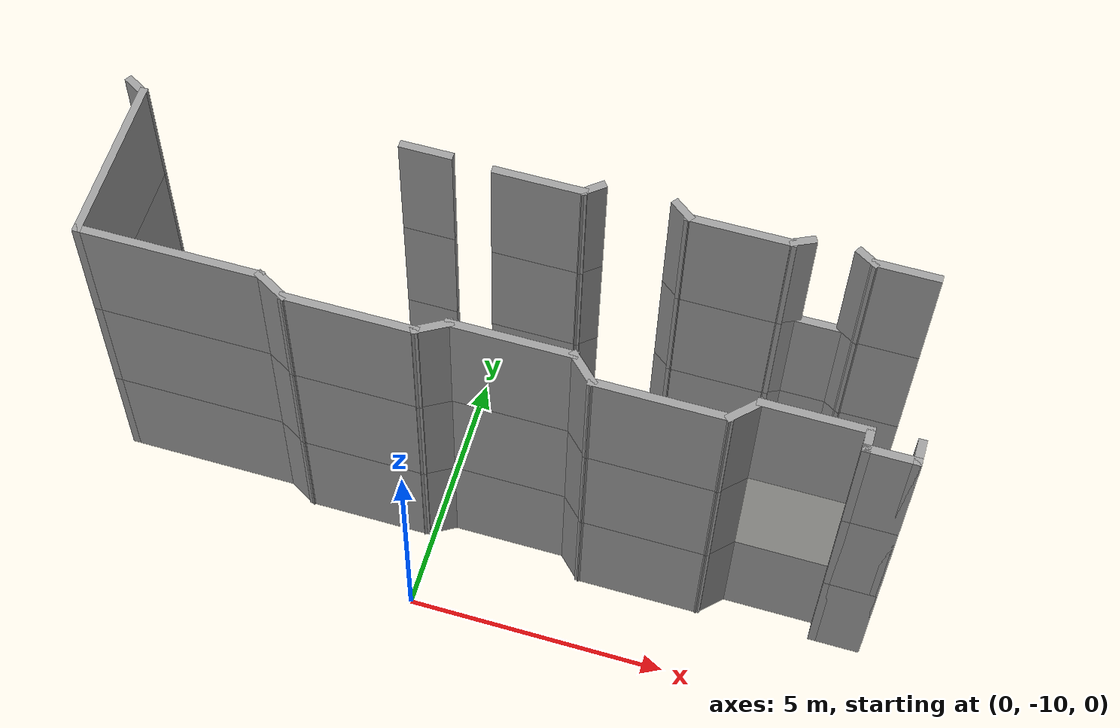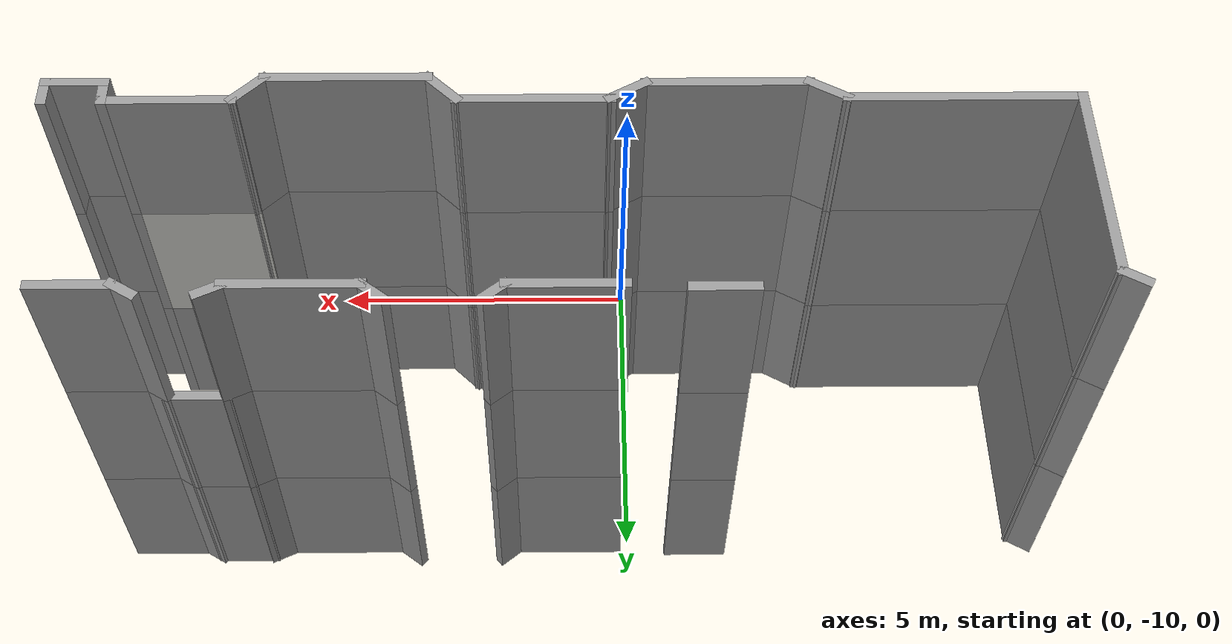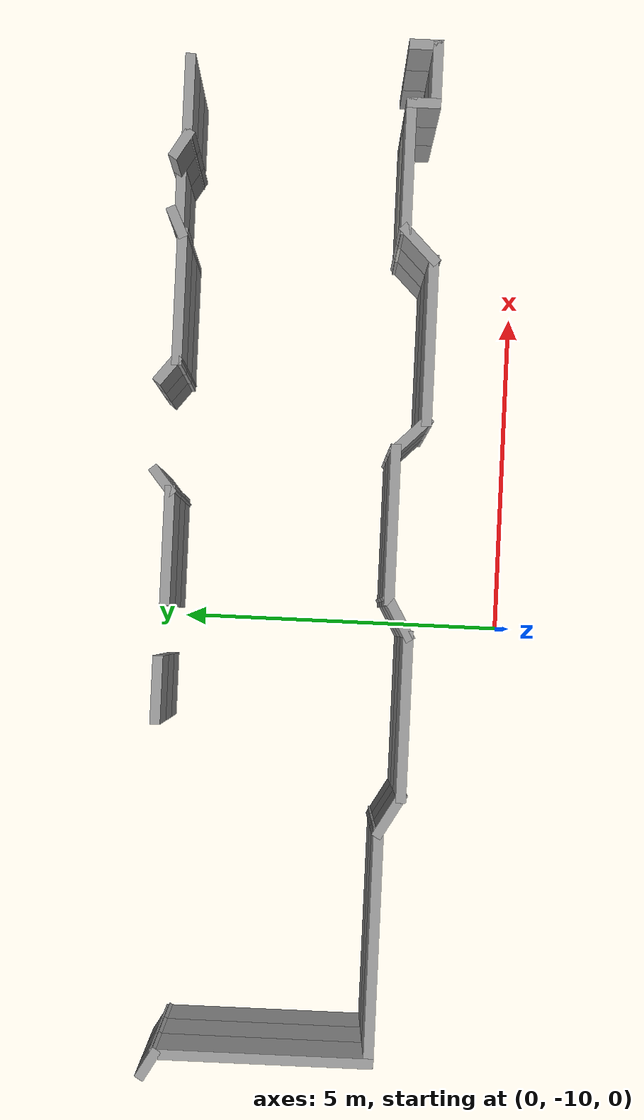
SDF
<sdf version="1.6">
 <model name="use_case1_stacked">
  <pose>0.822713 6.83476 0 0 -0 0</pose>
  <link name="Wall_111">
   <collision name="Wall_111_Collision">
    <geometry><box><size>1 0.15 2.5</size></box></geometry>
    <pose>0 0 1.25 0 -0 0</pose>
   </collision>
   <visual name="Wall_111_Visual">
    <pose>0 0 1.25 0 -0 0</pose>
    <geometry><box><size>1 0.15 2.5</size></box></geometry>
    <material>
     <script><uri>file://media/materials/scripts/gazebo.material</uri><name>Gazebo/Grey</name></script>
     <ambient>1 1 1 1</ambient>
    </material>
   </visual>
   <pose>-1.93738 -11.6696 0 0 -0 0</pose>
  </link>
  <link name="Wall_115">
   <collision name="Wall_115_Collision">
    <geometry><box><size>1.75 0.15 2.5</size></box></geometry>
    <pose>0 0 1.25 0 -0 0</pose>
   </collision>
   <visual name="Wall_115_Visual">
    <pose>0 0 1.25 0 -0 0</pose>
    <geometry><box><size>1.75 0.15 2.5</size></box></geometry>
    <material>
     <script><uri>file://media/materials/scripts/gazebo.material</uri><name>Gazebo/Grey</name></script>
     <ambient>1 1 1 1</ambient>
    </material>
   </visual>
   <pose>0.168215 -11.7308 0 0 -0 0</pose>
  </link>
  <link name="Wall_116">
   <collision name="Wall_116_Collision">
    <geometry><box><size>0.500794 0.15 2.5</size></box></geometry>
    <pose>0 0 1.25 0 -0 0</pose>
   </collision>
   <visual name="Wall_116_Visual">
    <pose>0 0 1.25 0 -0 0</pose>
    <geometry><box><size>0.500794 0.15 2.5</size></box></geometry>
    <material>
     <script><uri>file://media/materials/scripts/gazebo.material</uri><name>Gazebo/Grey</name></script>
     <ambient>1 1 1 1</ambient>
    </material>
   </visual>
   <pose>1.10448 -11.6203 0 0 -0 0.68113</pose>
  </link>
  <link name="Wall_118">
   <collision name="Wall_118_Collision">
    <geometry><box><size>0.502663 0.15 2.5</size></box></geometry>
    <pose>0 0 1.25 0 -0 0</pose>
   </collision>
   <visual name="Wall_118_Visual">
    <pose>0 0 1.25 0 -0 0</pose>
    <geometry><box><size>0.502663 0.15 2.5</size></box></geometry>
    <material>
     <script><uri>file://media/materials/scripts/gazebo.material</uri><name>Gazebo/Grey</name></script>
     <ambient>1 1 1 1</ambient>
    </material>
   </visual>
   <pose>2.72977 -11.6183 0 0 0 -0.662419</pose>
  </link>
  <link name="Wall_119">
   <collision name="Wall_119_Collision">
    <geometry><box><size>2 0.15 2.5</size></box></geometry>
    <pose>0 0 1.25 0 -0 0</pose>
   </collision>
   <visual name="Wall_119_Visual">
    <pose>0 0 1.25 0 -0 0</pose>
    <geometry><box><size>2 0.15 2.5</size></box></geometry>
    <material>
     <script><uri>file://media/materials/scripts/gazebo.material</uri><name>Gazebo/Grey</name></script>
     <ambient>1 1 1 1</ambient>
    </material>
   </visual>
   <pose>3.79381 -11.7421 0 0 -0 0</pose>
  </link>
  <link name="Wall_120">
   <collision name="Wall_120_Collision">
    <geometry><box><size>0.485752 0.15 2.5</size></box></geometry>
    <pose>0 0 1.25 0 -0 0</pose>
   </collision>
   <visual name="Wall_120_Visual">
    <pose>0 0 1.25 0 -0 0</pose>
    <geometry><box><size>0.485752 0.15 2.5</size></box></geometry>
    <material>
     <script><uri>file://media/materials/scripts/gazebo.material</uri><name>Gazebo/Grey</name></script>
     <ambient>1 1 1 1</ambient>
    </material>
   </visual>
   <pose>4.87037 -11.6546 0 0 -0 0.444613</pose>
  </link>
  <link name="Wall_121">
   <collision name="Wall_121_Collision">
    <geometry><box><size>1 0.15 2.5</size></box></geometry>
    <pose>0 0 1.25 0 -0 0</pose>
   </collision>
   <visual name="Wall_121_Visual">
    <pose>0 0 1.25 0 -0 0</pose>
    <geometry><box><size>1 0.15 2.5</size></box></geometry>
    <material>
     <script><uri>file://media/materials/scripts/gazebo.material</uri><name>Gazebo/Grey</name></script>
     <ambient>1 1 1 1</ambient>
    </material>
   </visual>
   <pose>5.44692 -11.5977 0 0 -0 0</pose>
  </link>
  <link name="Wall_122">
   <collision name="Wall_122_Collision">
    <geometry><box><size>0.486841 0.15 2.5</size></box></geometry>
    <pose>0 0 1.25 0 -0 0</pose>
   </collision>
   <visual name="Wall_122_Visual">
    <pose>0 0 1.25 0 -0 0</pose>
    <geometry><box><size>0.486841 0.15 2.5</size></box></geometry>
    <material>
     <script><uri>file://media/materials/scripts/gazebo.material</uri><name>Gazebo/Grey</name></script>
     <ambient>1 1 1 1</ambient>
    </material>
   </visual>
   <pose>6.01583 -11.6699 0 0 0 -0.546304</pose>
  </link>
  <link name="Wall_123">
   <collision name="Wall_123_Collision">
    <geometry><box><size>1.25 0.15 2.5</size></box></geometry>
    <pose>0 0 1.25 0 -0 0</pose>
   </collision>
   <visual name="Wall_123_Visual">
    <pose>0 0 1.25 0 -0 0</pose>
    <geometry><box><size>1.25 0.15 2.5</size></box></geometry>
    <material>
     <script><uri>file://media/materials/scripts/gazebo.material</uri><name>Gazebo/Grey</name></script>
     <ambient>1 1 1 1</ambient>
    </material>
   </visual>
   <pose>6.70973 -11.7421 0 0 -0 0</pose>
  </link>
  <link name="Wall_262">
   <collision name="Wall_262_Collision">
    <geometry><box><size>0.5 0.15 2.5</size></box></geometry>
    <pose>0 0 1.25 0 -0 0</pose>
   </collision>
   <visual name="Wall_262_Visual">
    <pose>0 0 1.25 0 -0 0</pose>
    <geometry><box><size>0.5 0.15 2.5</size></box></geometry>
    <material>
     <script><uri>file://media/materials/scripts/gazebo.material</uri><name>Gazebo/Grey</name></script>
     <ambient>1 1 1 1</ambient>
    </material>
   </visual>
   <pose>7.61542 -15.16 2.5 0 0 -1.5708</pose>
  </link>
  <link name="Wall_263">
   <collision name="Wall_263_Collision">
    <geometry><box><size>1 0.15 2.5</size></box></geometry>
    <pose>0 0 1.25 0 -0 0</pose>
   </collision>
   <visual name="Wall_263_Visual">
    <pose>0 0 1.25 0 -0 0</pose>
    <geometry><box><size>1 0.15 2.5</size></box></geometry>
    <material>
     <script><uri>file://media/materials/scripts/gazebo.material</uri><name>Gazebo/Grey</name></script>
     <ambient>1 1 1 1</ambient>
    </material>
   </visual>
   <pose>7.19042 -15.335 2.5 0 -0 3.14159</pose>
  </link>
  <link name="Wall_264">
   <collision name="Wall_264_Collision">
    <geometry><box><size>0.5 0.15 2.5</size></box></geometry>
    <pose>0 0 1.25 0 -0 0</pose>
   </collision>
   <visual name="Wall_264_Visual">
    <pose>0 0 1.25 0 -0 0</pose>
    <geometry><box><size>0.5 0.15 2.5</size></box></geometry>
    <material>
     <script><uri>file://media/materials/scripts/gazebo.material</uri><name>Gazebo/Grey</name></script>
     <ambient>1 1 1 1</ambient>
    </material>
   </visual>
   <pose>6.76541 -15.16 2.5 0 -0 1.5708</pose>
  </link>
  <link name="Wall_265">
   <collision name="Wall_265_Collision">
    <geometry><box><size>2 0.15 2.5</size></box></geometry>
    <pose>0 0 1.25 0 -0 0</pose>
   </collision>
   <visual name="Wall_265_Visual">
    <pose>0 0 1.25 0 -0 0</pose>
    <geometry><box><size>2 0.15 2.5</size></box></geometry>
    <material>
     <script><uri>file://media/materials/scripts/gazebo.material</uri><name>Gazebo/CeilingTiled</name></script>
     <ambient>1 1 1 1</ambient>
    </material>
   </visual>
   <pose>5.84042 -14.985 2.5 0 -0 3.14159</pose>
  </link>
  <link name="Wall_266">
   <collision name="Wall_266_Collision">
    <geometry><box><size>0.75 0.15 2.5</size></box></geometry>
    <pose>0 0 1.25 0 -0 0</pose>
   </collision>
   <visual name="Wall_266_Visual">
    <pose>0 0 1.25 0 -0 0</pose>
    <geometry><box><size>0.75 0.15 2.5</size></box></geometry>
    <material>
     <script><uri>file://media/materials/scripts/gazebo.material</uri><name>Gazebo/Grey</name></script>
     <ambient>1 1 1 1</ambient>
    </material>
   </visual>
   <pose>4.70328 -15.1972 2.5 0 0 -2.35619</pose>
  </link>
  <link name="Wall_267">
   <collision name="Wall_267_Collision">
    <geometry><box><size>2.5 0.15 2.5</size></box></geometry>
    <pose>0 0 1.25 0 -0 0</pose>
   </collision>
   <visual name="Wall_267_Visual">
    <pose>0 0 1.25 0 -0 0</pose>
    <geometry><box><size>2.5 0.15 2.5</size></box></geometry>
    <material>
     <script><uri>file://media/materials/scripts/gazebo.material</uri><name>Gazebo/Grey</name></script>
     <ambient>1 1 1 1</ambient>
    </material>
   </visual>
   <pose>3.31615 -15.4093 2.5 0 -0 3.14159</pose>
  </link>
  <link name="Wall_268">
   <collision name="Wall_268_Collision">
    <geometry><box><size>0.75 0.15 2.5</size></box></geometry>
    <pose>0 0 1.25 0 -0 0</pose>
   </collision>
   <visual name="Wall_268_Visual">
    <pose>0 0 1.25 0 -0 0</pose>
    <geometry><box><size>0.75 0.15 2.5</size></box></geometry>
    <material>
     <script><uri>file://media/materials/scripts/gazebo.material</uri><name>Gazebo/Grey</name></script>
     <ambient>1 1 1 1</ambient>
    </material>
   </visual>
   <pose>1.92902 -15.1972 2.5 0 -0 2.35619</pose>
  </link>
  <link name="Wall_269">
   <collision name="Wall_269_Collision">
    <geometry><box><size>2.35494 0.15 2.5</size></box></geometry>
    <pose>0 0 1.25 0 -0 0</pose>
   </collision>
   <visual name="Wall_269_Visual">
    <pose>0 0 1.25 0 -0 0</pose>
    <geometry><box><size>2.35494 0.15 2.5</size></box></geometry>
    <material>
     <script><uri>file://media/materials/scripts/gazebo.material</uri><name>Gazebo/Grey</name></script>
     <ambient>1 1 1 1</ambient>
    </material>
   </visual>
   <pose>0.614417 -14.985 2.5 0 -0 3.14159</pose>
  </link>
  <link name="Wall_270">
   <collision name="Wall_270_Collision">
    <geometry><box><size>0.75 0.15 2.5</size></box></geometry>
    <pose>0 0 1.25 0 -0 0</pose>
   </collision>
   <visual name="Wall_270_Visual">
    <pose>0 0 1.25 0 -0 0</pose>
    <geometry><box><size>0.75 0.15 2.5</size></box></geometry>
    <material>
     <script><uri>file://media/materials/scripts/gazebo.material</uri><name>Gazebo/Grey</name></script>
     <ambient>1 1 1 1</ambient>
    </material>
   </visual>
   <pose>-0.730371 -15.135 2.5 0 0 -2.61799</pose>
  </link>
  <link name="Wall_271">
   <collision name="Wall_271_Collision">
    <geometry><box><size>2.5 0.15 2.5</size></box></geometry>
    <pose>0 0 1.25 0 -0 0</pose>
   </collision>
   <visual name="Wall_271_Visual">
    <pose>0 0 1.25 0 -0 0</pose>
    <geometry><box><size>2.5 0.15 2.5</size></box></geometry>
    <material>
     <script><uri>file://media/materials/scripts/gazebo.material</uri><name>Gazebo/Grey</name></script>
     <ambient>1 1 1 1</ambient>
    </material>
   </visual>
   <pose>-2.16518 -15.285 2.5 0 -0 3.14159</pose>
  </link>
  <link name="Wall_272">
   <collision name="Wall_272_Collision">
    <geometry><box><size>0.75 0.15 2.5</size></box></geometry>
    <pose>0 0 1.25 0 -0 0</pose>
   </collision>
   <visual name="Wall_272_Visual">
    <pose>0 0 1.25 0 -0 0</pose>
    <geometry><box><size>0.75 0.15 2.5</size></box></geometry>
    <material>
     <script><uri>file://media/materials/scripts/gazebo.material</uri><name>Gazebo/Grey</name></script>
     <ambient>1 1 1 1</ambient>
    </material>
   </visual>
   <pose>-3.59999 -15.135 2.5 0 -0 2.61799</pose>
  </link>
  <link name="Wall_273">
   <collision name="Wall_273_Collision">
    <geometry><box><size>3.5 0.15 2.5</size></box></geometry>
    <pose>0 0 1.25 0 -0 0</pose>
   </collision>
   <visual name="Wall_273_Visual">
    <pose>0 0 1.25 0 -0 0</pose>
    <geometry><box><size>3.5 0.15 2.5</size></box></geometry>
    <material>
     <script><uri>file://media/materials/scripts/gazebo.material</uri><name>Gazebo/Grey</name></script>
     <ambient>1 1 1 1</ambient>
    </material>
   </visual>
   <pose>-5.53479 -14.985 2.5 0 -0 3.14159</pose>
  </link>
  <link name="Wall_274">
   <collision name="Wall_274_Collision">
    <geometry><box><size>3.25 0.15 2.5</size></box></geometry>
    <pose>0 0 1.25 0 -0 0</pose>
   </collision>
   <visual name="Wall_274_Visual">
    <pose>0 0 1.25 0 -0 0</pose>
    <geometry><box><size>3.25 0.15 2.5</size></box></geometry>
    <material>
     <script><uri>file://media/materials/scripts/gazebo.material</uri><name>Gazebo/Grey</name></script>
     <ambient>1 1 1 1</ambient>
    </material>
   </visual>
   <pose>-7.20979 -13.435 2.5 0 -0 1.5708</pose>
  </link>
  <link name="Wall_275">
   <collision name="Wall_275_Collision">
    <geometry><box><size>0.5 0.15 2.5</size></box></geometry>
    <pose>0 0 1.25 0 -0 0</pose>
   </collision>
   <visual name="Wall_275_Visual">
    <pose>0 0 1.25 0 -0 0</pose>
    <geometry><box><size>0.5 0.15 2.5</size></box></geometry>
    <material>
     <script><uri>file://media/materials/scripts/gazebo.material</uri><name>Gazebo/Grey</name></script>
     <ambient>1 1 1 1</ambient>
    </material>
   </visual>
   <pose>-7.36135 -11.7975 2.5 0 -0 2.61799</pose>
  </link>
  <link name="Wall_313">
   <collision name="Wall_313_Collision">
    <geometry><box><size>1 0.15 2.5</size></box></geometry>
    <pose>0 0 1.25 0 -0 0</pose>
   </collision>
   <visual name="Wall_313_Visual">
    <pose>0 0 1.25 0 -0 0</pose>
    <geometry><box><size>1 0.15 2.5</size></box></geometry>
    <material>
     <script><uri>file://media/materials/scripts/gazebo.material</uri><name>Gazebo/Grey</name></script>
     <ambient>1 1 1 1</ambient>
    </material>
   </visual>
   <pose>-1.93738 -11.6696 2.5 0 -0 0</pose>
  </link>
  <link name="Wall_317">
   <collision name="Wall_317_Collision">
    <geometry><box><size>1.75 0.15 2.5</size></box></geometry>
    <pose>0 0 1.25 0 -0 0</pose>
   </collision>
   <visual name="Wall_317_Visual">
    <pose>0 0 1.25 0 -0 0</pose>
    <geometry><box><size>1.75 0.15 2.5</size></box></geometry>
    <material>
     <script><uri>file://media/materials/scripts/gazebo.material</uri><name>Gazebo/Grey</name></script>
     <ambient>1 1 1 1</ambient>
    </material>
   </visual>
   <pose>0.168215 -11.7308 2.5 0 -0 0</pose>
  </link>
  <link name="Wall_318">
   <collision name="Wall_318_Collision">
    <geometry><box><size>0.500794 0.15 2.5</size></box></geometry>
    <pose>0 0 1.25 0 -0 0</pose>
   </collision>
   <visual name="Wall_318_Visual">
    <pose>0 0 1.25 0 -0 0</pose>
    <geometry><box><size>0.500794 0.15 2.5</size></box></geometry>
    <material>
     <script><uri>file://media/materials/scripts/gazebo.material</uri><name>Gazebo/Grey</name></script>
     <ambient>1 1 1 1</ambient>
    </material>
   </visual>
   <pose>1.10448 -11.6203 2.5 0 -0 0.68113</pose>
  </link>
  <link name="Wall_320">
   <collision name="Wall_320_Collision">
    <geometry><box><size>0.502663 0.15 2.5</size></box></geometry>
    <pose>0 0 1.25 0 -0 0</pose>
   </collision>
   <visual name="Wall_320_Visual">
    <pose>0 0 1.25 0 -0 0</pose>
    <geometry><box><size>0.502663 0.15 2.5</size></box></geometry>
    <material>
     <script><uri>file://media/materials/scripts/gazebo.material</uri><name>Gazebo/Grey</name></script>
     <ambient>1 1 1 1</ambient>
    </material>
   </visual>
   <pose>2.72977 -11.6183 2.5 0 0 -0.662419</pose>
  </link>
  <link name="Wall_321">
   <collision name="Wall_321_Collision">
    <geometry><box><size>2 0.15 2.5</size></box></geometry>
    <pose>0 0 1.25 0 -0 0</pose>
   </collision>
   <visual name="Wall_321_Visual">
    <pose>0 0 1.25 0 -0 0</pose>
    <geometry><box><size>2 0.15 2.5</size></box></geometry>
    <material>
     <script><uri>file://media/materials/scripts/gazebo.material</uri><name>Gazebo/Grey</name></script>
     <ambient>1 1 1 1</ambient>
    </material>
   </visual>
   <pose>3.79381 -11.7421 2.5 0 -0 0</pose>
  </link>
  <link name="Wall_322">
   <collision name="Wall_322_Collision">
    <geometry><box><size>0.485752 0.15 2.5</size></box></geometry>
    <pose>0 0 1.25 0 -0 0</pose>
   </collision>
   <visual name="Wall_322_Visual">
    <pose>0 0 1.25 0 -0 0</pose>
    <geometry><box><size>0.485752 0.15 2.5</size></box></geometry>
    <material>
     <script><uri>file://media/materials/scripts/gazebo.material</uri><name>Gazebo/Grey</name></script>
     <ambient>1 1 1 1</ambient>
    </material>
   </visual>
   <pose>4.87037 -11.6546 2.5 0 -0 0.444613</pose>
  </link>
  <link name="Wall_323">
   <collision name="Wall_323_Collision">
    <geometry><box><size>1 0.15 2.5</size></box></geometry>
    <pose>0 0 1.25 0 -0 0</pose>
   </collision>
   <visual name="Wall_323_Visual">
    <pose>0 0 1.25 0 -0 0</pose>
    <geometry><box><size>1 0.15 2.5</size></box></geometry>
    <material>
     <script><uri>file://media/materials/scripts/gazebo.material</uri><name>Gazebo/Grey</name></script>
     <ambient>1 1 1 1</ambient>
    </material>
   </visual>
   <pose>5.44692 -11.5977 2.5 0 -0 0</pose>
  </link>
  <link name="Wall_324">
   <collision name="Wall_324_Collision">
    <geometry><box><size>0.486841 0.15 2.5</size></box></geometry>
    <pose>0 0 1.25 0 -0 0</pose>
   </collision>
   <visual name="Wall_324_Visual">
    <pose>0 0 1.25 0 -0 0</pose>
    <geometry><box><size>0.486841 0.15 2.5</size></box></geometry>
    <material>
     <script><uri>file://media/materials/scripts/gazebo.material</uri><name>Gazebo/Grey</name></script>
     <ambient>1 1 1 1</ambient>
    </material>
   </visual>
   <pose>6.01583 -11.6699 2.5 0 0 -0.546304</pose>
  </link>
  <link name="Wall_325">
   <collision name="Wall_325_Collision">
    <geometry><box><size>1.25 0.15 2.5</size></box></geometry>
    <pose>0 0 1.25 0 -0 0</pose>
   </collision>
   <visual name="Wall_325_Visual">
    <pose>0 0 1.25 0 -0 0</pose>
    <geometry><box><size>1.25 0.15 2.5</size></box></geometry>
    <material>
     <script><uri>file://media/materials/scripts/gazebo.material</uri><name>Gazebo/Grey</name></script>
     <ambient>1 1 1 1</ambient>
    </material>
   </visual>
   <pose>6.70973 -11.7421 2.5 0 -0 0</pose>
  </link>
  <link name="Wall_329">
   <collision name="Wall_329_Collision">
    <geometry><box><size>0.5 0.15 2.5</size></box></geometry>
    <pose>0 0 1.25 0 -0 0</pose>
   </collision>
   <visual name="Wall_329_Visual">
    <pose>0 0 1.25 0 -0 0</pose>
    <geometry><box><size>0.5 0.15 2.5</size></box></geometry>
    <material>
     <script><uri>file://media/materials/scripts/gazebo.material</uri><name>Gazebo/Grey</name></script>
     <ambient>1 1 1 1</ambient>
    </material>
   </visual>
   <pose>7.61542 -15.16 5 0 0 -1.5708</pose>
  </link>
  <link name="Wall_330">
   <collision name="Wall_330_Collision">
    <geometry><box><size>1 0.15 2.5</size></box></geometry>
    <pose>0 0 1.25 0 -0 0</pose>
   </collision>
   <visual name="Wall_330_Visual">
    <pose>0 0 1.25 0 -0 0</pose>
    <geometry><box><size>1 0.15 2.5</size></box></geometry>
    <material>
     <script><uri>file://media/materials/scripts/gazebo.material</uri><name>Gazebo/Grey</name></script>
     <ambient>1 1 1 1</ambient>
    </material>
   </visual>
   <pose>7.19042 -15.335 5 0 -0 3.14159</pose>
  </link>
  <link name="Wall_331">
   <collision name="Wall_331_Collision">
    <geometry><box><size>0.5 0.15 2.5</size></box></geometry>
    <pose>0 0 1.25 0 -0 0</pose>
   </collision>
   <visual name="Wall_331_Visual">
    <pose>0 0 1.25 0 -0 0</pose>
    <geometry><box><size>0.5 0.15 2.5</size></box></geometry>
    <material>
     <script><uri>file://media/materials/scripts/gazebo.material</uri><name>Gazebo/Grey</name></script>
     <ambient>1 1 1 1</ambient>
    </material>
   </visual>
   <pose>6.76541 -15.16 5 0 -0 1.5708</pose>
  </link>
  <link name="Wall_332">
   <collision name="Wall_332_Collision">
    <geometry><box><size>2 0.15 2.5</size></box></geometry>
    <pose>0 0 1.25 0 -0 0</pose>
   </collision>
   <visual name="Wall_332_Visual">
    <pose>0 0 1.25 0 -0 0</pose>
    <geometry><box><size>2 0.15 2.5</size></box></geometry>
    <material>
     <script><uri>file://media/materials/scripts/gazebo.material</uri><name>Gazebo/Grey</name></script>
     <ambient>1 1 1 1</ambient>
    </material>
   </visual>
   <pose>5.84042 -14.985 5 0 -0 3.14159</pose>
  </link>
  <link name="Wall_333">
   <collision name="Wall_333_Collision">
    <geometry><box><size>0.75 0.15 2.5</size></box></geometry>
    <pose>0 0 1.25 0 -0 0</pose>
   </collision>
   <visual name="Wall_333_Visual">
    <pose>0 0 1.25 0 -0 0</pose>
    <geometry><box><size>0.75 0.15 2.5</size></box></geometry>
    <material>
     <script><uri>file://media/materials/scripts/gazebo.material</uri><name>Gazebo/Grey</name></script>
     <ambient>1 1 1 1</ambient>
    </material>
   </visual>
   <pose>4.70328 -15.1972 5 0 0 -2.35619</pose>
  </link>
  <link name="Wall_334">
   <collision name="Wall_334_Collision">
    <geometry><box><size>2.5 0.15 2.5</size></box></geometry>
    <pose>0 0 1.25 0 -0 0</pose>
   </collision>
   <visual name="Wall_334_Visual">
    <pose>0 0 1.25 0 -0 0</pose>
    <geometry><box><size>2.5 0.15 2.5</size></box></geometry>
    <material>
     <script><uri>file://media/materials/scripts/gazebo.material</uri><name>Gazebo/Grey</name></script>
     <ambient>1 1 1 1</ambient>
    </material>
   </visual>
   <pose>3.31615 -15.4093 5 0 -0 3.14159</pose>
  </link>
  <link name="Wall_335">
   <collision name="Wall_335_Collision">
    <geometry><box><size>0.75 0.15 2.5</size></box></geometry>
    <pose>0 0 1.25 0 -0 0</pose>
   </collision>
   <visual name="Wall_335_Visual">
    <pose>0 0 1.25 0 -0 0</pose>
    <geometry><box><size>0.75 0.15 2.5</size></box></geometry>
    <material>
     <script><uri>file://media/materials/scripts/gazebo.material</uri><name>Gazebo/Grey</name></script>
     <ambient>1 1 1 1</ambient>
    </material>
   </visual>
   <pose>1.92902 -15.1972 5 0 -0 2.35619</pose>
  </link>
  <link name="Wall_336">
   <collision name="Wall_336_Collision">
    <geometry><box><size>2.35494 0.15 2.5</size></box></geometry>
    <pose>0 0 1.25 0 -0 0</pose>
   </collision>
   <visual name="Wall_336_Visual">
    <pose>0 0 1.25 0 -0 0</pose>
    <geometry><box><size>2.35494 0.15 2.5</size></box></geometry>
    <material>
     <script><uri>file://media/materials/scripts/gazebo.material</uri><name>Gazebo/Grey</name></script>
     <ambient>1 1 1 1</ambient>
    </material>
   </visual>
   <pose>0.614417 -14.985 5 0 -0 3.14159</pose>
  </link>
  <link name="Wall_337">
   <collision name="Wall_337_Collision">
    <geometry><box><size>0.75 0.15 2.5</size></box></geometry>
    <pose>0 0 1.25 0 -0 0</pose>
   </collision>
   <visual name="Wall_337_Visual">
    <pose>0 0 1.25 0 -0 0</pose>
    <geometry><box><size>0.75 0.15 2.5</size></box></geometry>
    <material>
     <script><uri>file://media/materials/scripts/gazebo.material</uri><name>Gazebo/Grey</name></script>
     <ambient>1 1 1 1</ambient>
    </material>
   </visual>
   <pose>-0.730371 -15.135 5 0 0 -2.61799</pose>
  </link>
  <link name="Wall_338">
   <collision name="Wall_338_Collision">
    <geometry><box><size>2.5 0.15 2.5</size></box></geometry>
    <pose>0 0 1.25 0 -0 0</pose>
   </collision>
   <visual name="Wall_338_Visual">
    <pose>0 0 1.25 0 -0 0</pose>
    <geometry><box><size>2.5 0.15 2.5</size></box></geometry>
    <material>
     <script><uri>file://media/materials/scripts/gazebo.material</uri><name>Gazebo/Grey</name></script>
     <ambient>1 1 1 1</ambient>
    </material>
   </visual>
   <pose>-2.16518 -15.285 5 0 -0 3.14159</pose>
  </link>
  <link name="Wall_339">
   <collision name="Wall_339_Collision">
    <geometry><box><size>0.75 0.15 2.5</size></box></geometry>
    <pose>0 0 1.25 0 -0 0</pose>
   </collision>
   <visual name="Wall_339_Visual">
    <pose>0 0 1.25 0 -0 0</pose>
    <geometry><box><size>0.75 0.15 2.5</size></box></geometry>
    <material>
     <script><uri>file://media/materials/scripts/gazebo.material</uri><name>Gazebo/Grey</name></script>
     <ambient>1 1 1 1</ambient>
    </material>
   </visual>
   <pose>-3.59999 -15.135 5 0 -0 2.61799</pose>
  </link>
  <link name="Wall_340">
   <collision name="Wall_340_Collision">
    <geometry><box><size>3.5 0.15 2.5</size></box></geometry>
    <pose>0 0 1.25 0 -0 0</pose>
   </collision>
   <visual name="Wall_340_Visual">
    <pose>0 0 1.25 0 -0 0</pose>
    <geometry><box><size>3.5 0.15 2.5</size></box></geometry>
    <material>
     <script><uri>file://media/materials/scripts/gazebo.material</uri><name>Gazebo/Grey</name></script>
     <ambient>1 1 1 1</ambient>
    </material>
   </visual>
   <pose>-5.53479 -14.985 5 0 -0 3.14159</pose>
  </link>
  <link name="Wall_341">
   <collision name="Wall_341_Collision">
    <geometry><box><size>3.25 0.15 2.5</size></box></geometry>
    <pose>0 0 1.25 0 -0 0</pose>
   </collision>
   <visual name="Wall_341_Visual">
    <pose>0 0 1.25 0 -0 0</pose>
    <geometry><box><size>3.25 0.15 2.5</size></box></geometry>
    <material>
     <script><uri>file://media/materials/scripts/gazebo.material</uri><name>Gazebo/Grey</name></script>
     <ambient>1 1 1 1</ambient>
    </material>
   </visual>
   <pose>-7.20979 -13.435 5 0 -0 1.5708</pose>
  </link>
  <link name="Wall_342">
   <collision name="Wall_342_Collision">
    <geometry><box><size>0.5 0.15 2.5</size></box></geometry>
    <pose>0 0 1.25 0 -0 0</pose>
   </collision>
   <visual name="Wall_342_Visual">
    <pose>0 0 1.25 0 -0 0</pose>
    <geometry><box><size>0.5 0.15 2.5</size></box></geometry>
    <material>
     <script><uri>file://media/materials/scripts/gazebo.material</uri><name>Gazebo/Grey</name></script>
     <ambient>1 1 1 1</ambient>
    </material>
   </visual>
   <pose>-7.36135 -11.7975 5 0 -0 2.61799</pose>
  </link>
  <link name="Wall_380">
   <collision name="Wall_380_Collision">
    <geometry><box><size>1 0.15 2.5</size></box></geometry>
    <pose>0 0 1.25 0 -0 0</pose>
   </collision>
   <visual name="Wall_380_Visual">
    <pose>0 0 1.25 0 -0 0</pose>
    <geometry><box><size>1 0.15 2.5</size></box></geometry>
    <material>
     <script><uri>file://media/materials/scripts/gazebo.material</uri><name>Gazebo/Grey</name></script>
     <ambient>1 1 1 1</ambient>
    </material>
   </visual>
   <pose>-1.93738 -11.6696 5 0 -0 0</pose>
  </link>
  <link name="Wall_384">
   <collision name="Wall_384_Collision">
    <geometry><box><size>1.75 0.15 2.5</size></box></geometry>
    <pose>0 0 1.25 0 -0 0</pose>
   </collision>
   <visual name="Wall_384_Visual">
    <pose>0 0 1.25 0 -0 0</pose>
    <geometry><box><size>1.75 0.15 2.5</size></box></geometry>
    <material>
     <script><uri>file://media/materials/scripts/gazebo.material</uri><name>Gazebo/Grey</name></script>
     <ambient>1 1 1 1</ambient>
    </material>
   </visual>
   <pose>0.168215 -11.7308 5 0 -0 0</pose>
  </link>
  <link name="Wall_385">
   <collision name="Wall_385_Collision">
    <geometry><box><size>0.500794 0.15 2.5</size></box></geometry>
    <pose>0 0 1.25 0 -0 0</pose>
   </collision>
   <visual name="Wall_385_Visual">
    <pose>0 0 1.25 0 -0 0</pose>
    <geometry><box><size>0.500794 0.15 2.5</size></box></geometry>
    <material>
     <script><uri>file://media/materials/scripts/gazebo.material</uri><name>Gazebo/Grey</name></script>
     <ambient>1 1 1 1</ambient>
    </material>
   </visual>
   <pose>1.10448 -11.6203 5 0 -0 0.68113</pose>
  </link>
  <link name="Wall_387">
   <collision name="Wall_387_Collision">
    <geometry><box><size>0.502663 0.15 2.5</size></box></geometry>
    <pose>0 0 1.25 0 -0 0</pose>
   </collision>
   <visual name="Wall_387_Visual">
    <pose>0 0 1.25 0 -0 0</pose>
    <geometry><box><size>0.502663 0.15 2.5</size></box></geometry>
    <material>
     <script><uri>file://media/materials/scripts/gazebo.material</uri><name>Gazebo/Grey</name></script>
     <ambient>1 1 1 1</ambient>
    </material>
   </visual>
   <pose>2.72977 -11.6183 5 0 0 -0.662419</pose>
  </link>
  <link name="Wall_388">
   <collision name="Wall_388_Collision">
    <geometry><box><size>2 0.15 2.5</size></box></geometry>
    <pose>0 0 1.25 0 -0 0</pose>
   </collision>
   <visual name="Wall_388_Visual">
    <pose>0 0 1.25 0 -0 0</pose>
    <geometry><box><size>2 0.15 2.5</size></box></geometry>
    <material>
     <script><uri>file://media/materials/scripts/gazebo.material</uri><name>Gazebo/Grey</name></script>
     <ambient>1 1 1 1</ambient>
    </material>
   </visual>
   <pose>3.79381 -11.7421 5 0 -0 0</pose>
  </link>
  <link name="Wall_389">
   <collision name="Wall_389_Collision">
    <geometry><box><size>0.485752 0.15 2.5</size></box></geometry>
    <pose>0 0 1.25 0 -0 0</pose>
   </collision>
   <visual name="Wall_389_Visual">
    <pose>0 0 1.25 0 -0 0</pose>
    <geometry><box><size>0.485752 0.15 2.5</size></box></geometry>
    <material>
     <script><uri>file://media/materials/scripts/gazebo.material</uri><name>Gazebo/Grey</name></script>
     <ambient>1 1 1 1</ambient>
    </material>
   </visual>
   <pose>4.87037 -11.6546 5 0 -0 0.444613</pose>
  </link>
  <link name="Wall_39">
   <collision name="Wall_39_Collision">
    <geometry><box><size>0.5 0.15 2.5</size></box></geometry>
    <pose>0 0 1.25 0 -0 0</pose>
   </collision>
   <visual name="Wall_39_Visual">
    <pose>0 0 1.25 0 -0 0</pose>
    <geometry><box><size>0.5 0.15 2.5</size></box></geometry>
    <material>
     <script><uri>file://media/materials/scripts/gazebo.material</uri><name>Gazebo/Grey</name></script>
     <ambient>1 1 1 1</ambient>
    </material>
   </visual>
   <pose>7.61541 -15.16 0 0 0 -1.5708</pose>
  </link>
  <link name="Wall_391">
   <collision name="Wall_391_Collision">
    <geometry><box><size>0.486841 0.15 2.5</size></box></geometry>
    <pose>0 0 1.25 0 -0 0</pose>
   </collision>
   <visual name="Wall_391_Visual">
    <pose>0 0 1.25 0 -0 0</pose>
    <geometry><box><size>0.486841 0.15 2.5</size></box></geometry>
    <material>
     <script><uri>file://media/materials/scripts/gazebo.material</uri><name>Gazebo/Grey</name></script>
     <ambient>1 1 1 1</ambient>
    </material>
   </visual>
   <pose>6.01583 -11.6699 5 0 0 -0.546304</pose>
  </link>
  <link name="Wall_392">
   <collision name="Wall_392_Collision">
    <geometry><box><size>1.25 0.15 2.5</size></box></geometry>
    <pose>0 0 1.25 0 -0 0</pose>
   </collision>
   <visual name="Wall_392_Visual">
    <pose>0 0 1.25 0 -0 0</pose>
    <geometry><box><size>1.25 0.15 2.5</size></box></geometry>
    <material>
     <script><uri>file://media/materials/scripts/gazebo.material</uri><name>Gazebo/Grey</name></script>
     <ambient>1 1 1 1</ambient>
    </material>
   </visual>
   <pose>6.70973 -11.7421 5 0 -0 0</pose>
  </link>
  <link name="Wall_41">
   <collision name="Wall_41_Collision">
    <geometry><box><size>1 0.15 2.5</size></box></geometry>
    <pose>0 0 1.25 0 -0 0</pose>
   </collision>
   <visual name="Wall_41_Visual">
    <pose>0 0 1.25 0 -0 0</pose>
    <geometry><box><size>1 0.15 2.5</size></box></geometry>
    <material>
     <script><uri>file://media/materials/scripts/gazebo.material</uri><name>Gazebo/Grey</name></script>
     <ambient>1 1 1 1</ambient>
    </material>
   </visual>
   <pose>7.19042 -15.335 0 0 -0 3.14159</pose>
  </link>
  <link name="Wall_42">
   <collision name="Wall_42_Collision">
    <geometry><box><size>0.5 0.15 2.5</size></box></geometry>
    <pose>0 0 1.25 0 -0 0</pose>
   </collision>
   <visual name="Wall_42_Visual">
    <pose>0 0 1.25 0 -0 0</pose>
    <geometry><box><size>0.5 0.15 2.5</size></box></geometry>
    <material>
     <script><uri>file://media/materials/scripts/gazebo.material</uri><name>Gazebo/Grey</name></script>
     <ambient>1 1 1 1</ambient>
    </material>
   </visual>
   <pose>6.76541 -15.16 0 0 -0 1.5708</pose>
  </link>
  <link name="Wall_43">
   <collision name="Wall_43_Collision">
    <geometry><box><size>2 0.15 2.5</size></box></geometry>
    <pose>0 0 1.25 0 -0 0</pose>
   </collision>
   <visual name="Wall_43_Visual">
    <pose>0 0 1.25 0 -0 0</pose>
    <geometry><box><size>2 0.15 2.5</size></box></geometry>
    <material>
     <script><uri>file://media/materials/scripts/gazebo.material</uri><name>Gazebo/Grey</name></script>
     <ambient>1 1 1 1</ambient>
    </material>
   </visual>
   <pose>5.84042 -14.985 0 0 -0 3.14159</pose>
  </link>
  <link name="Wall_44">
   <collision name="Wall_44_Collision">
    <geometry><box><size>0.75 0.15 2.5</size></box></geometry>
    <pose>0 0 1.25 0 -0 0</pose>
   </collision>
   <visual name="Wall_44_Visual">
    <pose>0 0 1.25 0 -0 0</pose>
    <geometry><box><size>0.75 0.15 2.5</size></box></geometry>
    <material>
     <script><uri>file://media/materials/scripts/gazebo.material</uri><name>Gazebo/Grey</name></script>
     <ambient>1 1 1 1</ambient>
    </material>
   </visual>
   <pose>4.70328 -15.1972 0 0 0 -2.35619</pose>
  </link>
  <link name="Wall_46">
   <collision name="Wall_46_Collision">
    <geometry><box><size>2.5 0.15 2.5</size></box></geometry>
    <pose>0 0 1.25 0 -0 0</pose>
   </collision>
   <visual name="Wall_46_Visual">
    <pose>0 0 1.25 0 -0 0</pose>
    <geometry><box><size>2.5 0.15 2.5</size></box></geometry>
    <material>
     <script><uri>file://media/materials/scripts/gazebo.material</uri><name>Gazebo/Grey</name></script>
     <ambient>1 1 1 1</ambient>
    </material>
   </visual>
   <pose>3.31615 -15.4093 0 0 -0 3.14159</pose>
  </link>
  <link name="Wall_47">
   <collision name="Wall_47_Collision">
    <geometry><box><size>0.75 0.15 2.5</size></box></geometry>
    <pose>0 0 1.25 0 -0 0</pose>
   </collision>
   <visual name="Wall_47_Visual">
    <pose>0 0 1.25 0 -0 0</pose>
    <geometry><box><size>0.75 0.15 2.5</size></box></geometry>
    <material>
     <script><uri>file://media/materials/scripts/gazebo.material</uri><name>Gazebo/Grey</name></script>
     <ambient>1 1 1 1</ambient>
    </material>
   </visual>
   <pose>1.92902 -15.1972 0 0 -0 2.35619</pose>
  </link>
  <link name="Wall_48">
   <collision name="Wall_48_Collision">
    <geometry><box><size>2.35494 0.15 2.5</size></box></geometry>
    <pose>0 0 1.25 0 -0 0</pose>
   </collision>
   <visual name="Wall_48_Visual">
    <pose>0 0 1.25 0 -0 0</pose>
    <geometry><box><size>2.35494 0.15 2.5</size></box></geometry>
    <material>
     <script><uri>file://media/materials/scripts/gazebo.material</uri><name>Gazebo/Grey</name></script>
     <ambient>1 1 1 1</ambient>
    </material>
   </visual>
   <pose>0.614417 -14.985 0 0 -0 3.14159</pose>
  </link>
  <link name="Wall_50">
   <collision name="Wall_50_Collision">
    <geometry><box><size>0.75 0.15 2.5</size></box></geometry>
    <pose>0 0 1.25 0 -0 0</pose>
   </collision>
   <visual name="Wall_50_Visual">
    <pose>0 0 1.25 0 -0 0</pose>
    <geometry><box><size>0.75 0.15 2.5</size></box></geometry>
    <material>
     <script><uri>file://media/materials/scripts/gazebo.material</uri><name>Gazebo/Grey</name></script>
     <ambient>1 1 1 1</ambient>
    </material>
   </visual>
   <pose>-0.730371 -15.135 0 0 0 -2.61799</pose>
  </link>
  <link name="Wall_52">
   <collision name="Wall_52_Collision">
    <geometry><box><size>2.5 0.15 2.5</size></box></geometry>
    <pose>0 0 1.25 0 -0 0</pose>
   </collision>
   <visual name="Wall_52_Visual">
    <pose>0 0 1.25 0 -0 0</pose>
    <geometry><box><size>2.5 0.15 2.5</size></box></geometry>
    <material>
     <script><uri>file://media/materials/scripts/gazebo.material</uri><name>Gazebo/Grey</name></script>
     <ambient>1 1 1 1</ambient>
    </material>
   </visual>
   <pose>-2.16518 -15.285 0 0 -0 3.14159</pose>
  </link>
  <link name="Wall_54">
   <collision name="Wall_54_Collision">
    <geometry><box><size>0.75 0.15 2.5</size></box></geometry>
    <pose>0 0 1.25 0 -0 0</pose>
   </collision>
   <visual name="Wall_54_Visual">
    <pose>0 0 1.25 0 -0 0</pose>
    <geometry><box><size>0.75 0.15 2.5</size></box></geometry>
    <material>
     <script><uri>file://media/materials/scripts/gazebo.material</uri><name>Gazebo/Grey</name></script>
     <ambient>1 1 1 1</ambient>
    </material>
   </visual>
   <pose>-3.59999 -15.135 0 0 -0 2.61799</pose>
  </link>
  <link name="Wall_55">
   <collision name="Wall_55_Collision">
    <geometry><box><size>3.5 0.15 2.5</size></box></geometry>
    <pose>0 0 1.25 0 -0 0</pose>
   </collision>
   <visual name="Wall_55_Visual">
    <pose>0 0 1.25 0 -0 0</pose>
    <geometry><box><size>3.5 0.15 2.5</size></box></geometry>
    <material>
     <script><uri>file://media/materials/scripts/gazebo.material</uri><name>Gazebo/Grey</name></script>
     <ambient>1 1 1 1</ambient>
    </material>
   </visual>
   <pose>-5.53479 -14.985 0 0 -0 3.14159</pose>
  </link>
  <link name="Wall_56">
   <collision name="Wall_56_Collision">
    <geometry><box><size>3.25 0.15 2.5</size></box></geometry>
    <pose>0 0 1.25 0 -0 0</pose>
   </collision>
   <visual name="Wall_56_Visual">
    <pose>0 0 1.25 0 -0 0</pose>
    <geometry><box><size>3.25 0.15 2.5</size></box></geometry>
    <material>
     <script><uri>file://media/materials/scripts/gazebo.material</uri><name>Gazebo/Grey</name></script>
     <ambient>1 1 1 1</ambient>
    </material>
   </visual>
   <pose>-7.20979 -13.435 0 0 -0 1.5708</pose>
  </link>
  <link name="Wall_58">
   <collision name="Wall_58_Collision">
    <geometry><box><size>0.5 0.15 2.5</size></box></geometry>
    <pose>0 0 1.25 0 -0 0</pose>
   </collision>
   <visual name="Wall_58_Visual">
    <pose>0 0 1.25 0 -0 0</pose>
    <geometry><box><size>0.5 0.15 2.5</size></box></geometry>
    <material>
     <script><uri>file://media/materials/scripts/gazebo.material</uri><name>Gazebo/Grey</name></script>
     <ambient>1 1 1 1</ambient>
    </material>
   </visual>
   <pose>-7.36135 -11.7975 0 0 -0 2.61799</pose>
  </link>
  <static>1</static>
 </model>
</sdf>
